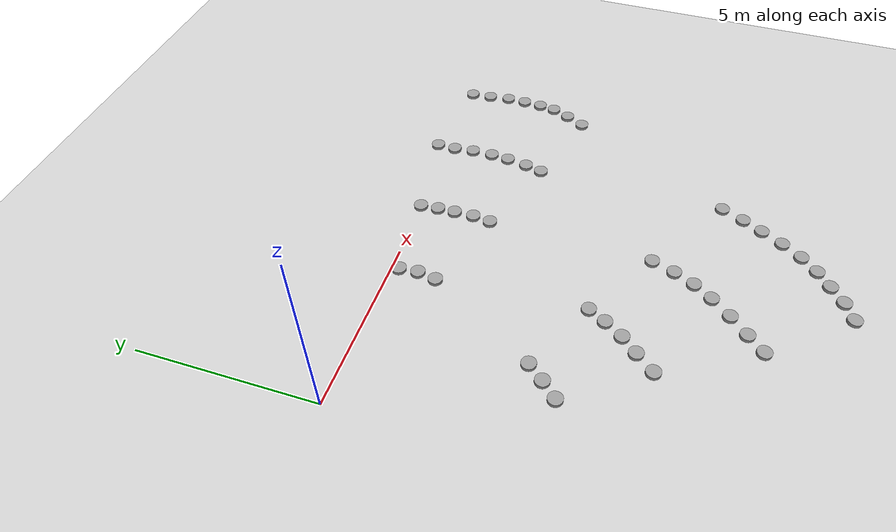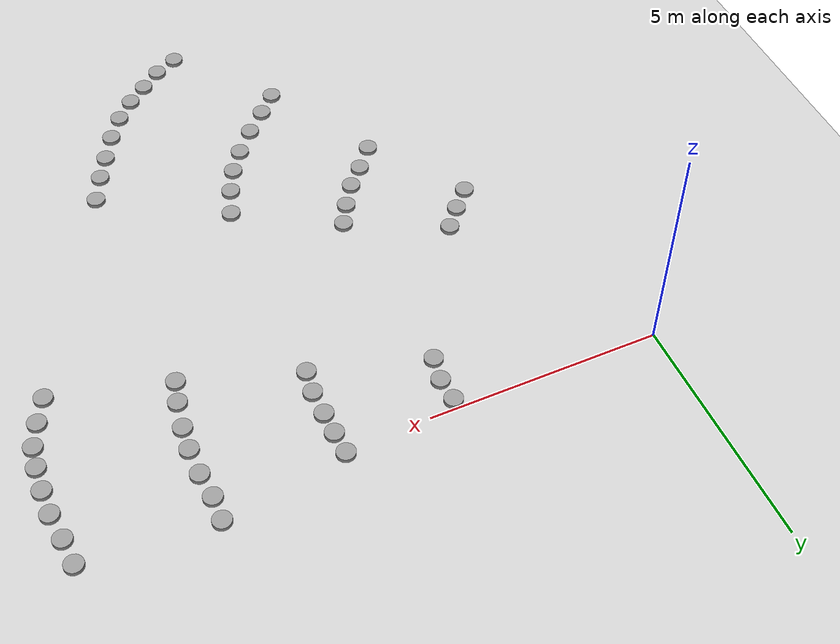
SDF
<sdf version="1.6">
 <world name="default">
  <model name="ground_plane">
   <static>1</static>
   <link name="link">
    <collision name="collision">
     <geometry><plane><normal>0 0 1</normal><size>100 100</size></plane></geometry>
     <surface><friction><ode><mu>100</mu><mu2>50</mu2></ode></friction></surface>
    </collision>
    <visual name="visual">
     <cast_shadows>0</cast_shadows>
     <geometry><plane><normal>0 0 1</normal><size>100 100</size></plane></geometry>
     <material>
      <script><uri>file://media/materials/scripts/gazebo.material</uri><name>Gazebo/Grey</name></script>
     </material>
    </visual>
   </link>
  </model>
  <model name="unit_cylinder_1_clone_clone_13_clone_56_clone_34_clone">
   <pose>12.1937 0.267663 0.048249 0 -0 0.015201</pose>
   <link name="link">
    <inertial>
     <mass>1</mass>
     <inertia><ixx>0.145833</ixx><ixy>0</ixy><ixz>0</ixz><iyy>0.145833</iyy><iyz>0</iyz><izz>0.125</izz></inertia>
    </inertial>
    <collision name="collision">
     <geometry><cylinder><radius>0.20005</radius><length>0.0965019</length></cylinder></geometry>
    </collision>
    <visual name="visual">
     <geometry><cylinder><radius>0.20005</radius><length>0.0965019</length></cylinder></geometry>
     <material>
      <script><name>Gazebo/Grey</name><uri>file://media/materials/scripts/gazebo.material</uri></script>
     </material>
    </visual>
   </link>
  </model>
  <model name="unit_cylinder_1_clone_clone_13_clone_56_clone_34_clone_0">
   <pose>12.2409 -0.320365 0.048249 0 -0 0.015201</pose>
   <link name="link">
    <inertial>
     <mass>1</mass>
     <inertia><ixx>0.145833</ixx><ixy>0</ixy><ixz>0</ixz><iyy>0.145833</iyy><iyz>0</iyz><izz>0.125</izz></inertia>
    </inertial>
    <collision name="collision">
     <geometry><cylinder><radius>0.20005</radius><length>0.0965019</length></cylinder></geometry>
    </collision>
    <visual name="visual">
     <geometry><cylinder><radius>0.20005</radius><length>0.0965019</length></cylinder></geometry>
     <material>
      <script><name>Gazebo/Grey</name><uri>file://media/materials/scripts/gazebo.material</uri></script>
     </material>
    </visual>
   </link>
  </model>
  <model name="unit_cylinder_1_clone_clone_13_clone_56_clone_34_clone_1">
   <pose>12.3164 -0.925131 0.048249 0 -0 0.015201</pose>
   <link name="link">
    <inertial>
     <mass>1</mass>
     <inertia><ixx>0.145833</ixx><ixy>0</ixy><ixz>0</ixz><iyy>0.145833</iyy><iyz>0</iyz><izz>0.125</izz></inertia>
    </inertial>
    <collision name="collision">
     <geometry><cylinder><radius>0.20005</radius><length>0.0965019</length></cylinder></geometry>
    </collision>
    <visual name="visual">
     <geometry><cylinder><radius>0.20005</radius><length>0.0965019</length></cylinder></geometry>
     <material>
      <script><name>Gazebo/Grey</name><uri>file://media/materials/scripts/gazebo.material</uri></script>
     </material>
    </visual>
   </link>
  </model>
  <model name="unit_cylinder_1_clone_clone_13_clone_56_clone_34_clone_2">
   <pose>12.3143 -1.4792 0.048244 0 -0 0.015201</pose>
   <link name="link">
    <inertial>
     <mass>1</mass>
     <inertia><ixx>0.145833</ixx><ixy>0</ixy><ixz>0</ixz><iyy>0.145833</iyy><iyz>0</iyz><izz>0.125</izz></inertia>
    </inertial>
    <collision name="collision">
     <geometry><cylinder><radius>0.20005</radius><length>0.0965019</length></cylinder></geometry>
    </collision>
    <visual name="visual">
     <geometry><cylinder><radius>0.20005</radius><length>0.0965019</length></cylinder></geometry>
     <material>
      <script><name>Gazebo/Grey</name><uri>file://media/materials/scripts/gazebo.material</uri></script>
     </material>
    </visual>
   </link>
  </model>
  <model name="unit_cylinder_1_clone_clone_13_clone_56_clone_34_clone_3">
   <pose>12.2819 -2.01723 0.048243 -2e-06 2e-06 0.015201</pose>
   <link name="link">
    <inertial>
     <mass>1</mass>
     <inertia><ixx>0.145833</ixx><ixy>0</ixy><ixz>0</ixz><iyy>0.145833</iyy><iyz>0</iyz><izz>0.125</izz></inertia>
    </inertial>
    <collision name="collision">
     <geometry><cylinder><radius>0.20005</radius><length>0.0965019</length></cylinder></geometry>
    </collision>
    <visual name="visual">
     <geometry><cylinder><radius>0.20005</radius><length>0.0965019</length></cylinder></geometry>
     <material>
      <script><name>Gazebo/Grey</name><uri>file://media/materials/scripts/gazebo.material</uri></script>
     </material>
    </visual>
   </link>
  </model>
  <model name="unit_cylinder_1_clone_clone_13_clone_56_clone_34_clone_4">
   <pose>12.2142 -2.49039 0.048243 -2e-06 2e-06 0.015201</pose>
   <link name="link">
    <inertial>
     <mass>1</mass>
     <inertia><ixx>0.145833</ixx><ixy>0</ixy><ixz>0</ixz><iyy>0.145833</iyy><iyz>0</iyz><izz>0.125</izz></inertia>
    </inertial>
    <collision name="collision">
     <geometry><cylinder><radius>0.20005</radius><length>0.0965019</length></cylinder></geometry>
    </collision>
    <visual name="visual">
     <geometry><cylinder><radius>0.20005</radius><length>0.0965019</length></cylinder></geometry>
     <material>
      <script><name>Gazebo/Grey</name><uri>file://media/materials/scripts/gazebo.material</uri></script>
     </material>
    </visual>
   </link>
  </model>
  <model name="unit_cylinder_1_clone_clone_13_clone_56_clone_34_clone_5">
   <pose>12 -3 0.048249 1e-06 -1e-06 0.015201</pose>
   <link name="link">
    <inertial>
     <mass>1</mass>
     <inertia><ixx>0.145833</ixx><ixy>0</ixy><ixz>0</ixz><iyy>0.145833</iyy><iyz>0</iyz><izz>0.125</izz></inertia>
    </inertial>
    <collision name="collision">
     <geometry><cylinder><radius>0.20005</radius><length>0.0965019</length></cylinder></geometry>
    </collision>
    <visual name="visual">
     <geometry><cylinder><radius>0.20005</radius><length>0.0965019</length></cylinder></geometry>
     <material>
      <script><name>Gazebo/Grey</name><uri>file://media/materials/scripts/gazebo.material</uri></script>
     </material>
    </visual>
   </link>
  </model>
  <model name="unit_cylinder_1_clone_clone_13_clone_56_clone_34_clone_6">
   <pose>11.7319 -3.52736 0.048249 1e-06 -1e-06 0.015201</pose>
   <link name="link">
    <inertial>
     <mass>1</mass>
     <inertia><ixx>0.145833</ixx><ixy>0</ixy><ixz>0</ixz><iyy>0.145833</iyy><iyz>0</iyz><izz>0.125</izz></inertia>
    </inertial>
    <collision name="collision">
     <geometry><cylinder><radius>0.20005</radius><length>0.0965019</length></cylinder></geometry>
    </collision>
    <visual name="visual">
     <geometry><cylinder><radius>0.20005</radius><length>0.0965019</length></cylinder></geometry>
     <material>
      <script><name>Gazebo/Grey</name><uri>file://media/materials/scripts/gazebo.material</uri></script>
     </material>
    </visual>
   </link>
  </model>
  <model name="unit_cylinder_1_clone_clone_13_clone_56_clone_34_clone_8">
   <pose>9.44024 -0.044123 0.048245 0 -0 0.015201</pose>
   <link name="link">
    <inertial>
     <mass>1</mass>
     <inertia><ixx>0.145833</ixx><ixy>0</ixy><ixz>0</ixz><iyy>0.145833</iyy><iyz>0</iyz><izz>0.125</izz></inertia>
    </inertial>
    <collision name="collision">
     <geometry><cylinder><radius>0.20005</radius><length>0.0965019</length></cylinder></geometry>
    </collision>
    <visual name="visual">
     <geometry><cylinder><radius>0.20005</radius><length>0.0965019</length></cylinder></geometry>
     <material>
      <script><name>Gazebo/Grey</name><uri>file://media/materials/scripts/gazebo.material</uri></script>
     </material>
    </visual>
   </link>
  </model>
  <model name="unit_cylinder_1_clone_clone_13_clone_56_clone_34_clone_9">
   <pose>9.50201 -0.618001 0.048249 1e-06 -1e-06 0.015201</pose>
   <link name="link">
    <inertial>
     <mass>1</mass>
     <inertia><ixx>0.145833</ixx><ixy>0</ixy><ixz>0</ixz><iyy>0.145833</iyy><iyz>0</iyz><izz>0.125</izz></inertia>
    </inertial>
    <collision name="collision">
     <geometry><cylinder><radius>0.20005</radius><length>0.0965019</length></cylinder></geometry>
    </collision>
    <visual name="visual">
     <geometry><cylinder><radius>0.20005</radius><length>0.0965019</length></cylinder></geometry>
     <material>
      <script><name>Gazebo/Grey</name><uri>file://media/materials/scripts/gazebo.material</uri></script>
     </material>
    </visual>
   </link>
  </model>
  <model name="unit_cylinder_1_clone_clone_13_clone_56_clone_34_clone_10">
   <pose>9.50697 -1.22259 0.048243 -1e-06 1e-06 0.015201</pose>
   <link name="link">
    <inertial>
     <mass>1</mass>
     <inertia><ixx>0.145833</ixx><ixy>0</ixy><ixz>0</ixz><iyy>0.145833</iyy><iyz>0</iyz><izz>0.125</izz></inertia>
    </inertial>
    <collision name="collision">
     <geometry><cylinder><radius>0.20005</radius><length>0.0965019</length></cylinder></geometry>
    </collision>
    <visual name="visual">
     <geometry><cylinder><radius>0.20005</radius><length>0.0965019</length></cylinder></geometry>
     <material>
      <script><name>Gazebo/Grey</name><uri>file://media/materials/scripts/gazebo.material</uri></script>
     </material>
    </visual>
   </link>
  </model>
  <model name="unit_cylinder_1_clone_clone_13_clone_56_clone_34_clone_11">
   <pose>9.46183 -1.74553 0.048243 -1e-06 1e-06 0.015201</pose>
   <link name="link">
    <inertial>
     <mass>1</mass>
     <inertia><ixx>0.145833</ixx><ixy>0</ixy><ixz>0</ixz><iyy>0.145833</iyy><iyz>0</iyz><izz>0.125</izz></inertia>
    </inertial>
    <collision name="collision">
     <geometry><cylinder><radius>0.20005</radius><length>0.0965019</length></cylinder></geometry>
    </collision>
    <visual name="visual">
     <geometry><cylinder><radius>0.20005</radius><length>0.0965019</length></cylinder></geometry>
     <material>
      <script><name>Gazebo/Grey</name><uri>file://media/materials/scripts/gazebo.material</uri></script>
     </material>
    </visual>
   </link>
  </model>
  <model name="unit_cylinder_1_clone_clone_13_clone_56_clone_34_clone_12">
   <pose>9.36305 -2.34871 0.048249 0 -0 0.015201</pose>
   <link name="link">
    <inertial>
     <mass>1</mass>
     <inertia><ixx>0.145833</ixx><ixy>0</ixy><ixz>0</ixz><iyy>0.145833</iyy><iyz>0</iyz><izz>0.125</izz></inertia>
    </inertial>
    <collision name="collision">
     <geometry><cylinder><radius>0.20005</radius><length>0.0965019</length></cylinder></geometry>
    </collision>
    <visual name="visual">
     <geometry><cylinder><radius>0.20005</radius><length>0.0965019</length></cylinder></geometry>
     <material>
      <script><name>Gazebo/Grey</name><uri>file://media/materials/scripts/gazebo.material</uri></script>
     </material>
    </visual>
   </link>
  </model>
  <model name="unit_cylinder_1_clone_clone_13_clone_56_clone_34_clone_13">
   <pose>9.23829 -2.84355 0.048244 0 -0 1.35588</pose>
   <link name="link">
    <inertial>
     <mass>1</mass>
     <inertia><ixx>0.145833</ixx><ixy>0</ixy><ixz>0</ixz><iyy>0.145833</iyy><iyz>0</iyz><izz>0.125</izz></inertia>
    </inertial>
    <collision name="collision">
     <geometry><cylinder><radius>0.20005</radius><length>0.0965019</length></cylinder></geometry>
    </collision>
    <visual name="visual">
     <geometry><cylinder><radius>0.20005</radius><length>0.0965019</length></cylinder></geometry>
     <material>
      <script><name>Gazebo/Grey</name><uri>file://media/materials/scripts/gazebo.material</uri></script>
     </material>
    </visual>
   </link>
  </model>
  <model name="unit_cylinder_1_clone_clone_13_clone_56_clone_34_clone_14">
   <pose>6.80065 0.0717 0.048249 0 -0 0.015201</pose>
   <link name="link">
    <inertial>
     <mass>1</mass>
     <inertia><ixx>0.145833</ixx><ixy>0</ixy><ixz>0</ixz><iyy>0.145833</iyy><iyz>0</iyz><izz>0.125</izz></inertia>
    </inertial>
    <collision name="collision">
     <geometry><cylinder><radius>0.20005</radius><length>0.0965019</length></cylinder></geometry>
    </collision>
    <visual name="visual">
     <geometry><cylinder><radius>0.20005</radius><length>0.0965019</length></cylinder></geometry>
     <material>
      <script><name>Gazebo/Grey</name><uri>file://media/materials/scripts/gazebo.material</uri></script>
     </material>
    </visual>
   </link>
  </model>
  <model name="unit_cylinder_1_clone_clone_13_clone_56_clone_34_clone_15">
   <pose>6.83326 -0.435253 0.048249 0 -0 0.015201</pose>
   <link name="link">
    <inertial>
     <mass>1</mass>
     <inertia><ixx>0.145833</ixx><ixy>0</ixy><ixz>0</ixz><iyy>0.145833</iyy><iyz>0</iyz><izz>0.125</izz></inertia>
    </inertial>
    <collision name="collision">
     <geometry><cylinder><radius>0.20005</radius><length>0.0965019</length></cylinder></geometry>
    </collision>
    <visual name="visual">
     <geometry><cylinder><radius>0.20005</radius><length>0.0965019</length></cylinder></geometry>
     <material>
      <script><name>Gazebo/Grey</name><uri>file://media/materials/scripts/gazebo.material</uri></script>
     </material>
    </visual>
   </link>
  </model>
  <model name="unit_cylinder_1_clone_clone_13_clone_56_clone_34_clone_16">
   <pose>6.84672 -0.934954 0.048243 -1e-06 1e-06 0.015201</pose>
   <link name="link">
    <inertial>
     <mass>1</mass>
     <inertia><ixx>0.145833</ixx><ixy>0</ixy><ixz>0</ixz><iyy>0.145833</iyy><iyz>0</iyz><izz>0.125</izz></inertia>
    </inertial>
    <collision name="collision">
     <geometry><cylinder><radius>0.20005</radius><length>0.0965019</length></cylinder></geometry>
    </collision>
    <visual name="visual">
     <geometry><cylinder><radius>0.20005</radius><length>0.0965019</length></cylinder></geometry>
     <material>
      <script><name>Gazebo/Grey</name><uri>file://media/materials/scripts/gazebo.material</uri></script>
     </material>
    </visual>
   </link>
  </model>
  <model name="unit_cylinder_1_clone_clone_13_clone_56_clone_34_clone_17">
   <pose>6.8579 -1.49385 0.048249 0 -0 0.015201</pose>
   <link name="link">
    <inertial>
     <mass>1</mass>
     <inertia><ixx>0.145833</ixx><ixy>0</ixy><ixz>0</ixz><iyy>0.145833</iyy><iyz>0</iyz><izz>0.125</izz></inertia>
    </inertial>
    <collision name="collision">
     <geometry><cylinder><radius>0.20005</radius><length>0.0965019</length></cylinder></geometry>
    </collision>
    <visual name="visual">
     <geometry><cylinder><radius>0.20005</radius><length>0.0965019</length></cylinder></geometry>
     <material>
      <script><name>Gazebo/Grey</name><uri>file://media/materials/scripts/gazebo.material</uri></script>
     </material>
    </visual>
   </link>
  </model>
  <model name="unit_cylinder_1_clone_clone_13_clone_56_clone_34_clone_18">
   <pose>6.78655 -2.00858 0.048249 0 -0 0.015201</pose>
   <link name="link">
    <inertial>
     <mass>1</mass>
     <inertia><ixx>0.145833</ixx><ixy>0</ixy><ixz>0</ixz><iyy>0.145833</iyy><iyz>0</iyz><izz>0.125</izz></inertia>
    </inertial>
    <collision name="collision">
     <geometry><cylinder><radius>0.20005</radius><length>0.0965019</length></cylinder></geometry>
    </collision>
    <visual name="visual">
     <geometry><cylinder><radius>0.20005</radius><length>0.0965019</length></cylinder></geometry>
     <material>
      <script><name>Gazebo/Grey</name><uri>file://media/materials/scripts/gazebo.material</uri></script>
     </material>
    </visual>
   </link>
  </model>
  <model name="unit_cylinder_1_clone_clone_13_clone_56_clone_34_clone_19">
   <pose>4.39979 -0.211784 0.048249 0 -0 0.015201</pose>
   <link name="link">
    <inertial>
     <mass>1</mass>
     <inertia><ixx>0.145833</ixx><ixy>0</ixy><ixz>0</ixz><iyy>0.145833</iyy><iyz>0</iyz><izz>0.125</izz></inertia>
    </inertial>
    <collision name="collision">
     <geometry><cylinder><radius>0.20005</radius><length>0.0965019</length></cylinder></geometry>
    </collision>
    <visual name="visual">
     <geometry><cylinder><radius>0.20005</radius><length>0.0965019</length></cylinder></geometry>
     <material>
      <script><name>Gazebo/Grey</name><uri>file://media/materials/scripts/gazebo.material</uri></script>
     </material>
    </visual>
   </link>
  </model>
  <model name="unit_cylinder_1_clone_clone_13_clone_56_clone_34_clone_20">
   <pose>4.43692 -0.735738 0.048243 -1e-06 1e-06 0.015201</pose>
   <link name="link">
    <inertial>
     <mass>1</mass>
     <inertia><ixx>0.145833</ixx><ixy>0</ixy><ixz>0</ixz><iyy>0.145833</iyy><iyz>0</iyz><izz>0.125</izz></inertia>
    </inertial>
    <collision name="collision">
     <geometry><cylinder><radius>0.20005</radius><length>0.0965019</length></cylinder></geometry>
    </collision>
    <visual name="visual">
     <geometry><cylinder><radius>0.20005</radius><length>0.0965019</length></cylinder></geometry>
     <material>
      <script><name>Gazebo/Grey</name><uri>file://media/materials/scripts/gazebo.material</uri></script>
     </material>
    </visual>
   </link>
  </model>
  <model name="unit_cylinder_1_clone_clone_13_clone_56_clone_34_clone_21">
   <pose>4.34042 -1.26685 0.048243 -1e-06 1e-06 0.015201</pose>
   <link name="link">
    <inertial>
     <mass>1</mass>
     <inertia><ixx>0.145833</ixx><ixy>0</ixy><ixz>0</ixz><iyy>0.145833</iyy><iyz>0</iyz><izz>0.125</izz></inertia>
    </inertial>
    <collision name="collision">
     <geometry><cylinder><radius>0.20005</radius><length>0.0965019</length></cylinder></geometry>
    </collision>
    <visual name="visual">
     <geometry><cylinder><radius>0.20005</radius><length>0.0965019</length></cylinder></geometry>
     <material>
      <script><name>Gazebo/Grey</name><uri>file://media/materials/scripts/gazebo.material</uri></script>
     </material>
    </visual>
   </link>
  </model>
  <model name="unit_cylinder_1_clone_clone_13_clone_56_clone_34_clone_22">
   <pose>2.53514 -4.33414 0.048247 0 -0 0.015201</pose>
   <link name="link">
    <inertial>
     <mass>1</mass>
     <inertia><ixx>0.145833</ixx><ixy>0</ixy><ixz>0</ixz><iyy>0.145833</iyy><iyz>0</iyz><izz>0.125</izz></inertia>
    </inertial>
    <collision name="collision">
     <geometry><cylinder><radius>0.20005</radius><length>0.0965019</length></cylinder></geometry>
    </collision>
    <visual name="visual">
     <geometry><cylinder><radius>0.20005</radius><length>0.0965019</length></cylinder></geometry>
     <material>
      <script><name>Gazebo/Grey</name><uri>file://media/materials/scripts/gazebo.material</uri></script>
     </material>
    </visual>
   </link>
  </model>
  <model name="unit_cylinder_1_clone_clone_13_clone_56_clone_34_clone_23">
   <pose>2.16905 -4.77365 0.048247 0 -0 0.015201</pose>
   <link name="link">
    <inertial>
     <mass>1</mass>
     <inertia><ixx>0.145833</ixx><ixy>0</ixy><ixz>0</ixz><iyy>0.145833</iyy><iyz>0</iyz><izz>0.125</izz></inertia>
    </inertial>
    <collision name="collision">
     <geometry><cylinder><radius>0.20005</radius><length>0.0965019</length></cylinder></geometry>
    </collision>
    <visual name="visual">
     <geometry><cylinder><radius>0.20005</radius><length>0.0965019</length></cylinder></geometry>
     <material>
      <script><name>Gazebo/Grey</name><uri>file://media/materials/scripts/gazebo.material</uri></script>
     </material>
    </visual>
   </link>
  </model>
  <model name="unit_cylinder_1_clone_clone_13_clone_56_clone_34_clone_24">
   <pose>1.77694 -5.19106 0.048244 0 -0 0.015201</pose>
   <link name="link">
    <inertial>
     <mass>1</mass>
     <inertia><ixx>0.145833</ixx><ixy>0</ixy><ixz>0</ixz><iyy>0.145833</iyy><iyz>0</iyz><izz>0.125</izz></inertia>
    </inertial>
    <collision name="collision">
     <geometry><cylinder><radius>0.20005</radius><length>0.0965019</length></cylinder></geometry>
    </collision>
    <visual name="visual">
     <geometry><cylinder><radius>0.20005</radius><length>0.0965019</length></cylinder></geometry>
     <material>
      <script><name>Gazebo/Grey</name><uri>file://media/materials/scripts/gazebo.material</uri></script>
     </material>
    </visual>
   </link>
  </model>
  <model name="unit_cylinder_1_clone_clone_13_clone_56_clone_34_clone_25">
   <pose>4.59389 -5.35942 0.048247 0 -0 0.015201</pose>
   <link name="link">
    <inertial>
     <mass>1</mass>
     <inertia><ixx>0.145833</ixx><ixy>0</ixy><ixz>0</ixz><iyy>0.145833</iyy><iyz>0</iyz><izz>0.125</izz></inertia>
    </inertial>
    <collision name="collision">
     <geometry><cylinder><radius>0.20005</radius><length>0.0965019</length></cylinder></geometry>
    </collision>
    <visual name="visual">
     <geometry><cylinder><radius>0.20005</radius><length>0.0965019</length></cylinder></geometry>
     <material>
      <script><name>Gazebo/Grey</name><uri>file://media/materials/scripts/gazebo.material</uri></script>
     </material>
    </visual>
   </link>
  </model>
  <model name="unit_cylinder_1_clone_clone_13_clone_56_clone_34_clone_26">
   <pose>4.33174 -5.83668 0.048247 0 -0 0.015201</pose>
   <link name="link">
    <inertial>
     <mass>1</mass>
     <inertia><ixx>0.145833</ixx><ixy>0</ixy><ixz>0</ixz><iyy>0.145833</iyy><iyz>0</iyz><izz>0.125</izz></inertia>
    </inertial>
    <collision name="collision">
     <geometry><cylinder><radius>0.20005</radius><length>0.0965019</length></cylinder></geometry>
    </collision>
    <visual name="visual">
     <geometry><cylinder><radius>0.20005</radius><length>0.0965019</length></cylinder></geometry>
     <material>
      <script><name>Gazebo/Grey</name><uri>file://media/materials/scripts/gazebo.material</uri></script>
     </material>
    </visual>
   </link>
  </model>
  <model name="unit_cylinder_1_clone_clone_13_clone_56_clone_34_clone_27">
   <pose>4.00831 -6.33458 0.048244 0 -0 0.015201</pose>
   <link name="link">
    <inertial>
     <mass>1</mass>
     <inertia><ixx>0.145833</ixx><ixy>0</ixy><ixz>0</ixz><iyy>0.145833</iyy><iyz>0</iyz><izz>0.125</izz></inertia>
    </inertial>
    <collision name="collision">
     <geometry><cylinder><radius>0.20005</radius><length>0.0965019</length></cylinder></geometry>
    </collision>
    <visual name="visual">
     <geometry><cylinder><radius>0.20005</radius><length>0.0965019</length></cylinder></geometry>
     <material>
      <script><name>Gazebo/Grey</name><uri>file://media/materials/scripts/gazebo.material</uri></script>
     </material>
    </visual>
   </link>
  </model>
  <model name="unit_cylinder_1_clone_clone_13_clone_56_clone_34_clone_28">
   <pose>3.62072 -6.76158 0.048244 0 -0 0.015201</pose>
   <link name="link">
    <inertial>
     <mass>1</mass>
     <inertia><ixx>0.145833</ixx><ixy>0</ixy><ixz>0</ixz><iyy>0.145833</iyy><iyz>0</iyz><izz>0.125</izz></inertia>
    </inertial>
    <collision name="collision">
     <geometry><cylinder><radius>0.20005</radius><length>0.0965019</length></cylinder></geometry>
    </collision>
    <visual name="visual">
     <geometry><cylinder><radius>0.20005</radius><length>0.0965019</length></cylinder></geometry>
     <material>
      <script><name>Gazebo/Grey</name><uri>file://media/materials/scripts/gazebo.material</uri></script>
     </material>
    </visual>
   </link>
  </model>
  <model name="unit_cylinder_1_clone_clone_13_clone_56_clone_34_clone_29">
   <pose>3.20719 -7.2577 0.048247 0 -0 0.015201</pose>
   <link name="link">
    <inertial>
     <mass>1</mass>
     <inertia><ixx>0.145833</ixx><ixy>0</ixy><ixz>0</ixz><iyy>0.145833</iyy><iyz>0</iyz><izz>0.125</izz></inertia>
    </inertial>
    <collision name="collision">
     <geometry><cylinder><radius>0.20005</radius><length>0.0965019</length></cylinder></geometry>
    </collision>
    <visual name="visual">
     <geometry><cylinder><radius>0.20005</radius><length>0.0965019</length></cylinder></geometry>
     <material>
      <script><name>Gazebo/Grey</name><uri>file://media/materials/scripts/gazebo.material</uri></script>
     </material>
    </visual>
   </link>
  </model>
  <model name="unit_cylinder_1_clone_clone_13_clone_56_clone_34_clone_30">
   <pose>6.71083 -6.63281 0.048247 0 -0 0.015201</pose>
   <link name="link">
    <inertial>
     <mass>1</mass>
     <inertia><ixx>0.145833</ixx><ixy>0</ixy><ixz>0</ixz><iyy>0.145833</iyy><iyz>0</iyz><izz>0.125</izz></inertia>
    </inertial>
    <collision name="collision">
     <geometry><cylinder><radius>0.20005</radius><length>0.0965019</length></cylinder></geometry>
    </collision>
    <visual name="visual">
     <geometry><cylinder><radius>0.20005</radius><length>0.0965019</length></cylinder></geometry>
     <material>
      <script><name>Gazebo/Grey</name><uri>file://media/materials/scripts/gazebo.material</uri></script>
     </material>
    </visual>
   </link>
  </model>
  <model name="unit_cylinder_1_clone_clone_13_clone_56_clone_34_clone_31">
   <pose>6.49472 -7.25896 0.048246 1e-06 -1e-06 0.015201</pose>
   <link name="link">
    <inertial>
     <mass>1</mass>
     <inertia><ixx>0.145833</ixx><ixy>0</ixy><ixz>0</ixz><iyy>0.145833</iyy><iyz>0</iyz><izz>0.125</izz></inertia>
    </inertial>
    <collision name="collision">
     <geometry><cylinder><radius>0.20005</radius><length>0.0965019</length></cylinder></geometry>
    </collision>
    <visual name="visual">
     <geometry><cylinder><radius>0.20005</radius><length>0.0965019</length></cylinder></geometry>
     <material>
      <script><name>Gazebo/Grey</name><uri>file://media/materials/scripts/gazebo.material</uri></script>
     </material>
    </visual>
   </link>
  </model>
  <model name="unit_cylinder_1_clone_clone_13_clone_56_clone_34_clone_32">
   <pose>6.23642 -7.81752 0.048246 1e-06 -1e-06 0.015201</pose>
   <link name="link">
    <inertial>
     <mass>1</mass>
     <inertia><ixx>0.145833</ixx><ixy>0</ixy><ixz>0</ixz><iyy>0.145833</iyy><iyz>0</iyz><izz>0.125</izz></inertia>
    </inertial>
    <collision name="collision">
     <geometry><cylinder><radius>0.20005</radius><length>0.0965019</length></cylinder></geometry>
    </collision>
    <visual name="visual">
     <geometry><cylinder><radius>0.20005</radius><length>0.0965019</length></cylinder></geometry>
     <material>
      <script><name>Gazebo/Grey</name><uri>file://media/materials/scripts/gazebo.material</uri></script>
     </material>
    </visual>
   </link>
  </model>
  <model name="unit_cylinder_1_clone_clone_13_clone_56_clone_34_clone_33">
   <pose>5.89505 -8.32008 0.048247 0 -0 0.015201</pose>
   <link name="link">
    <inertial>
     <mass>1</mass>
     <inertia><ixx>0.145833</ixx><ixy>0</ixy><ixz>0</ixz><iyy>0.145833</iyy><iyz>0</iyz><izz>0.125</izz></inertia>
    </inertial>
    <collision name="collision">
     <geometry><cylinder><radius>0.20005</radius><length>0.0965019</length></cylinder></geometry>
    </collision>
    <visual name="visual">
     <geometry><cylinder><radius>0.20005</radius><length>0.0965019</length></cylinder></geometry>
     <material>
      <script><name>Gazebo/Grey</name><uri>file://media/materials/scripts/gazebo.material</uri></script>
     </material>
    </visual>
   </link>
  </model>
  <model name="unit_cylinder_1_clone_clone_13_clone_56_clone_34_clone_34">
   <pose>5.46007 -8.84042 0.048244 0 -0 0.015201</pose>
   <link name="link">
    <inertial>
     <mass>1</mass>
     <inertia><ixx>0.145833</ixx><ixy>0</ixy><ixz>0</ixz><iyy>0.145833</iyy><iyz>0</iyz><izz>0.125</izz></inertia>
    </inertial>
    <collision name="collision">
     <geometry><cylinder><radius>0.20005</radius><length>0.0965019</length></cylinder></geometry>
    </collision>
    <visual name="visual">
     <geometry><cylinder><radius>0.20005</radius><length>0.0965019</length></cylinder></geometry>
     <material>
      <script><name>Gazebo/Grey</name><uri>file://media/materials/scripts/gazebo.material</uri></script>
     </material>
    </visual>
   </link>
  </model>
  <model name="unit_cylinder_1_clone_clone_13_clone_56_clone_34_clone_35">
   <pose>4.99873 -9.31344 0.048244 0 -0 0.015201</pose>
   <link name="link">
    <inertial>
     <mass>1</mass>
     <inertia><ixx>0.145833</ixx><ixy>0</ixy><ixz>0</ixz><iyy>0.145833</iyy><iyz>0</iyz><izz>0.125</izz></inertia>
    </inertial>
    <collision name="collision">
     <geometry><cylinder><radius>0.20005</radius><length>0.0965019</length></cylinder></geometry>
    </collision>
    <visual name="visual">
     <geometry><cylinder><radius>0.20005</radius><length>0.0965019</length></cylinder></geometry>
     <material>
      <script><name>Gazebo/Grey</name><uri>file://media/materials/scripts/gazebo.material</uri></script>
     </material>
    </visual>
   </link>
  </model>
  <model name="unit_cylinder_1_clone_clone_13_clone_56_clone_34_clone_36">
   <pose>4.58723 -9.75751 0.048247 0 -0 0.015201</pose>
   <link name="link">
    <inertial>
     <mass>1</mass>
     <inertia><ixx>0.145833</ixx><ixy>0</ixy><ixz>0</ixz><iyy>0.145833</iyy><iyz>0</iyz><izz>0.125</izz></inertia>
    </inertial>
    <collision name="collision">
     <geometry><cylinder><radius>0.20005</radius><length>0.0965019</length></cylinder></geometry>
    </collision>
    <visual name="visual">
     <geometry><cylinder><radius>0.20005</radius><length>0.0965019</length></cylinder></geometry>
     <material>
      <script><name>Gazebo/Grey</name><uri>file://media/materials/scripts/gazebo.material</uri></script>
     </material>
    </visual>
   </link>
  </model>
  <model name="unit_cylinder_1_clone_clone_13_clone_56_clone_34_clone_37">
   <pose>9.27447 -8.22241 0.048247 0 -0 0.015201</pose>
   <link name="link">
    <inertial>
     <mass>1</mass>
     <inertia><ixx>0.145833</ixx><ixy>0</ixy><ixz>0</ixz><iyy>0.145833</iyy><iyz>0</iyz><izz>0.125</izz></inertia>
    </inertial>
    <collision name="collision">
     <geometry><cylinder><radius>0.20005</radius><length>0.0965019</length></cylinder></geometry>
    </collision>
    <visual name="visual">
     <geometry><cylinder><radius>0.20005</radius><length>0.0965019</length></cylinder></geometry>
     <material>
      <script><name>Gazebo/Grey</name><uri>file://media/materials/scripts/gazebo.material</uri></script>
     </material>
    </visual>
   </link>
  </model>
  <model name="unit_cylinder_1_clone_clone_13_clone_56_clone_34_clone_38">
   <pose>9.00125 -8.83113 0.048244 0 -0 0.015201</pose>
   <link name="link">
    <inertial>
     <mass>1</mass>
     <inertia><ixx>0.145833</ixx><ixy>0</ixy><ixz>0</ixz><iyy>0.145833</iyy><iyz>0</iyz><izz>0.125</izz></inertia>
    </inertial>
    <collision name="collision">
     <geometry><cylinder><radius>0.20005</radius><length>0.0965019</length></cylinder></geometry>
    </collision>
    <visual name="visual">
     <geometry><cylinder><radius>0.20005</radius><length>0.0965019</length></cylinder></geometry>
     <material>
      <script><name>Gazebo/Grey</name><uri>file://media/materials/scripts/gazebo.material</uri></script>
     </material>
    </visual>
   </link>
  </model>
  <model name="unit_cylinder_1_clone_clone_13_clone_56_clone_34_clone_39">
   <pose>8.71671 -9.36842 0.048247 0 -0 0.015201</pose>
   <link name="link">
    <inertial>
     <mass>1</mass>
     <inertia><ixx>0.145833</ixx><ixy>0</ixy><ixz>0</ixz><iyy>0.145833</iyy><iyz>0</iyz><izz>0.125</izz></inertia>
    </inertial>
    <collision name="collision">
     <geometry><cylinder><radius>0.20005</radius><length>0.0965019</length></cylinder></geometry>
    </collision>
    <visual name="visual">
     <geometry><cylinder><radius>0.20005</radius><length>0.0965019</length></cylinder></geometry>
     <material>
      <script><name>Gazebo/Grey</name><uri>file://media/materials/scripts/gazebo.material</uri></script>
     </material>
    </visual>
   </link>
  </model>
  <model name="unit_cylinder_1_clone_clone_13_clone_56_clone_34_clone_40">
   <pose>8.40891 -9.94354 0.048247 0 -0 0.015201</pose>
   <link name="link">
    <inertial>
     <mass>1</mass>
     <inertia><ixx>0.145833</ixx><ixy>0</ixy><ixz>0</ixz><iyy>0.145833</iyy><iyz>0</iyz><izz>0.125</izz></inertia>
    </inertial>
    <collision name="collision">
     <geometry><cylinder><radius>0.20005</radius><length>0.0965019</length></cylinder></geometry>
    </collision>
    <visual name="visual">
     <geometry><cylinder><radius>0.20005</radius><length>0.0965019</length></cylinder></geometry>
     <material>
      <script><name>Gazebo/Grey</name><uri>file://media/materials/scripts/gazebo.material</uri></script>
     </material>
    </visual>
   </link>
  </model>
  <model name="unit_cylinder_1_clone_clone_13_clone_56_clone_34_clone_41">
   <pose>8.05722 -10.4703 0.048247 0 -0 0.015201</pose>
   <link name="link">
    <inertial>
     <mass>1</mass>
     <inertia><ixx>0.145833</ixx><ixy>0</ixy><ixz>0</ixz><iyy>0.145833</iyy><iyz>0</iyz><izz>0.125</izz></inertia>
    </inertial>
    <collision name="collision">
     <geometry><cylinder><radius>0.20005</radius><length>0.0965019</length></cylinder></geometry>
    </collision>
    <visual name="visual">
     <geometry><cylinder><radius>0.20005</radius><length>0.0965019</length></cylinder></geometry>
     <material>
      <script><name>Gazebo/Grey</name><uri>file://media/materials/scripts/gazebo.material</uri></script>
     </material>
    </visual>
   </link>
  </model>
  <model name="unit_cylinder_1_clone_clone_13_clone_56_clone_34_clone_42">
   <pose>7.65597 -10.8966 0.048244 0 -0 0.015201</pose>
   <link name="link">
    <inertial>
     <mass>1</mass>
     <inertia><ixx>0.145833</ixx><ixy>0</ixy><ixz>0</ixz><iyy>0.145833</iyy><iyz>0</iyz><izz>0.125</izz></inertia>
    </inertial>
    <collision name="collision">
     <geometry><cylinder><radius>0.20005</radius><length>0.0965019</length></cylinder></geometry>
    </collision>
    <visual name="visual">
     <geometry><cylinder><radius>0.20005</radius><length>0.0965019</length></cylinder></geometry>
     <material>
      <script><name>Gazebo/Grey</name><uri>file://media/materials/scripts/gazebo.material</uri></script>
     </material>
    </visual>
   </link>
  </model>
  <model name="unit_cylinder_1_clone_clone_13_clone_56_clone_34_clone_43">
   <pose>7.22749 -11.2498 0.048244 0 -0 0.015201</pose>
   <link name="link">
    <inertial>
     <mass>1</mass>
     <inertia><ixx>0.145833</ixx><ixy>0</ixy><ixz>0</ixz><iyy>0.145833</iyy><iyz>0</iyz><izz>0.125</izz></inertia>
    </inertial>
    <collision name="collision">
     <geometry><cylinder><radius>0.20005</radius><length>0.0965019</length></cylinder></geometry>
    </collision>
    <visual name="visual">
     <geometry><cylinder><radius>0.20005</radius><length>0.0965019</length></cylinder></geometry>
     <material>
      <script><name>Gazebo/Grey</name><uri>file://media/materials/scripts/gazebo.material</uri></script>
     </material>
    </visual>
   </link>
  </model>
  <model name="unit_cylinder_1_clone_clone_13_clone_56_clone_34_clone_44">
   <pose>6.78247 -11.606 0.048244 0 -0 0.015201</pose>
   <link name="link">
    <inertial>
     <mass>1</mass>
     <inertia><ixx>0.145833</ixx><ixy>0</ixy><ixz>0</ixz><iyy>0.145833</iyy><iyz>0</iyz><izz>0.125</izz></inertia>
    </inertial>
    <collision name="collision">
     <geometry><cylinder><radius>0.20005</radius><length>0.0965019</length></cylinder></geometry>
    </collision>
    <visual name="visual">
     <geometry><cylinder><radius>0.20005</radius><length>0.0965019</length></cylinder></geometry>
     <material>
      <script><name>Gazebo/Grey</name><uri>file://media/materials/scripts/gazebo.material</uri></script>
     </material>
    </visual>
   </link>
  </model>
  <model name="unit_cylinder_1_clone_clone_13_clone_56_clone_34_clone_45">
   <pose>6.27719 -11.8646 0.048247 0 -0 0.015201</pose>
   <link name="link">
    <inertial>
     <mass>1</mass>
     <inertia><ixx>0.145833</ixx><ixy>0</ixy><ixz>0</ixz><iyy>0.145833</iyy><iyz>0</iyz><izz>0.125</izz></inertia>
    </inertial>
    <collision name="collision">
     <geometry><cylinder><radius>0.20005</radius><length>0.0965019</length></cylinder></geometry>
    </collision>
    <visual name="visual">
     <geometry><cylinder><radius>0.20005</radius><length>0.0965019</length></cylinder></geometry>
     <material>
      <script><name>Gazebo/Grey</name><uri>file://media/materials/scripts/gazebo.material</uri></script>
     </material>
    </visual>
   </link>
  </model>
  <model name="unit_cylinder_1_clone_clone_13_clone_56_clone_34_clone_clone_clone">
   <pose>9.45144 0.50252 0.048249 1e-06 -1e-06 0.015201</pose>
   <link name="link">
    <inertial>
     <mass>1</mass>
     <inertia><ixx>0.145833</ixx><ixy>0</ixy><ixz>0</ixz><iyy>0.145833</iyy><iyz>0</iyz><izz>0.125</izz></inertia>
    </inertial>
    <collision name="collision">
     <geometry><cylinder><radius>0.20005</radius><length>0.0965019</length></cylinder></geometry>
    </collision>
    <visual name="visual">
     <geometry><cylinder><radius>0.20005</radius><length>0.0965019</length></cylinder></geometry>
     <material>
      <script><name>Gazebo/Grey</name><uri>file://media/materials/scripts/gazebo.material</uri></script>
     </material>
    </visual>
   </link>
  </model>
 </world>
</sdf>
